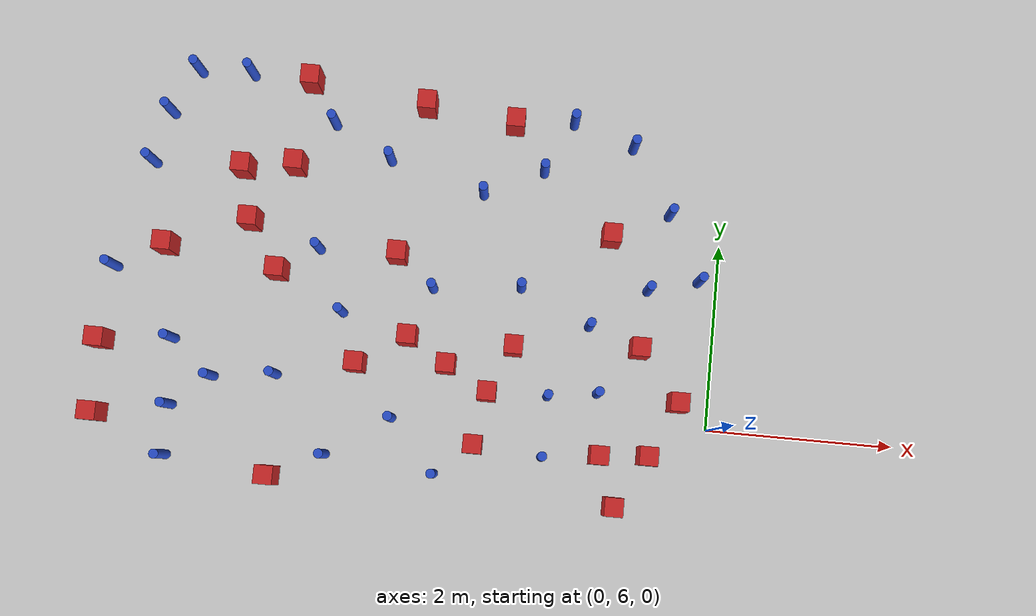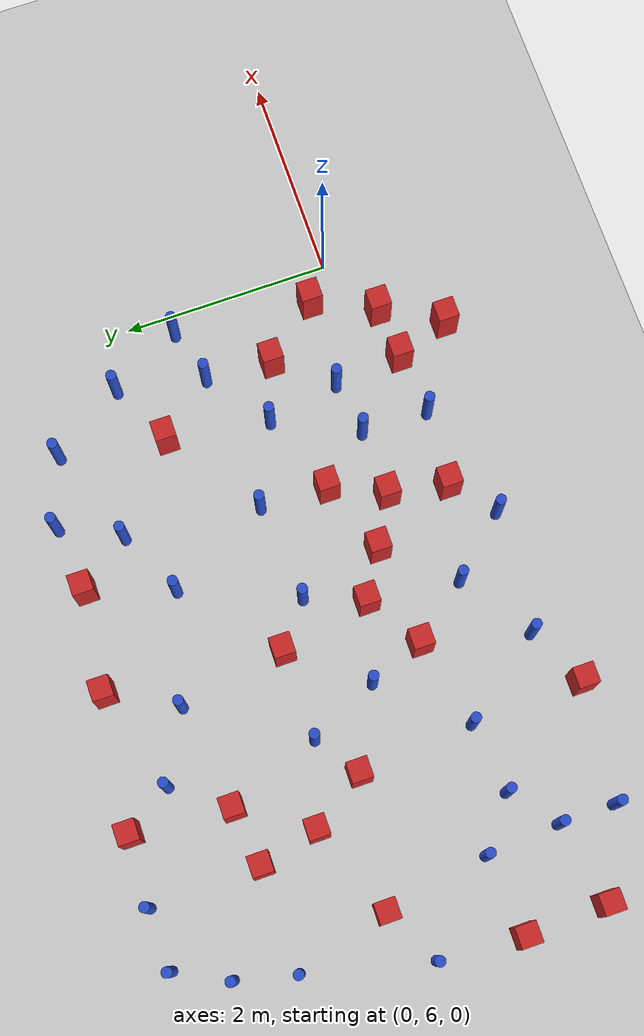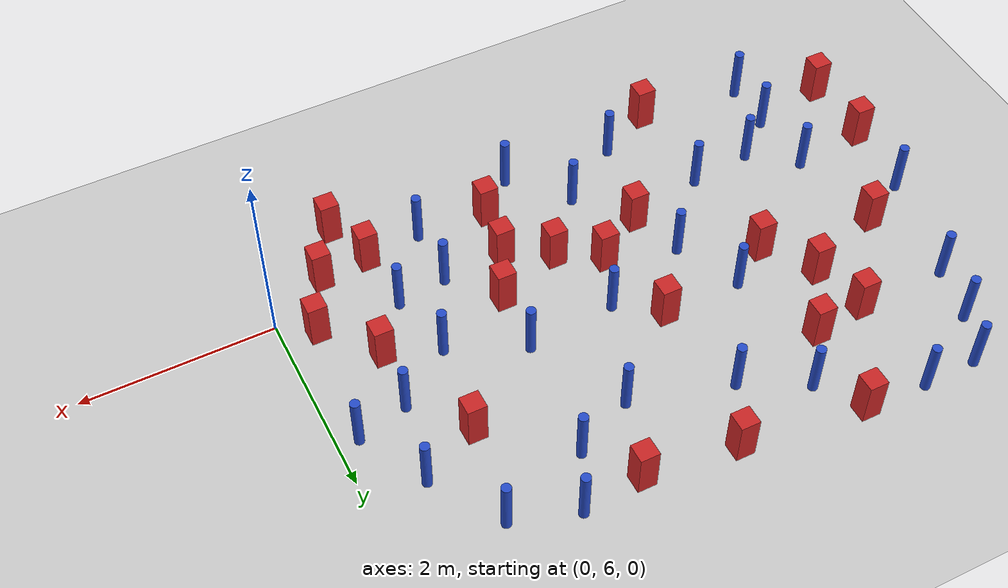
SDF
<sdf version="1.6">
 <world name="default">
  <model name="ground_plane">
   <static>1</static>
   <link name="link">
    <collision name="collision">
     <geometry><plane><normal>0 0 1</normal><size>100 100</size></plane></geometry>
     <surface><friction><ode><mu>100</mu><mu2>50</mu2></ode></friction></surface>
    </collision>
    <visual name="visual">
     <cast_shadows>0</cast_shadows>
     <geometry><plane><normal>0 0 1</normal><size>100 100</size></plane></geometry>
     <material>
      <ambient>1.0 1.0 1.0 1.0</ambient>
      <diffuse>0.8 0.8 0.8 1.0</diffuse>
      <specular>0.01 0.01 0.01 1.000000</specular>
     </material>
    </visual>
   </link>
  </model>
  <model name="square_post_obstacle17">
   <static>true</static>
   <pose>-0.951644109244 5.10202093142 8.22691968438e-08 7.22125133819e-06 -7.54495500217e-07 2.29674213826e-05</pose>
   <link name="link">
    <pose>0 0 0.25 0 -0 0</pose>
    <inertial>
     <mass>100</mass>
     <inertia>
      <ixx>0.166667</ixx>
      <ixy>0</ixy>
      <ixz>0</ixz>
      <iyy>0.166667</iyy>
      <iyz>0</iyz>
      <izz>0.166667</izz>
     </inertia>
    </inertial>
    <collision name="collision"><geometry><box><size>.2 .2 .5</size></box></geometry></collision>
    <visual name="visual">
     <geometry><box><size>.2 .2 .5</size></box></geometry>
     <material>
      <script><name>Gazebo/Red</name><uri>file://media/materials/scripts/gazebo.material</uri></script>
     </material>
    </visual>
   </link>
  </model>
  <model name="pole_obstacle15">
   <static>true</static>
   <pose>-1.73520311705 6.2080001693 2.88873142074e-08 -9.90536689852e-09 4.60219948989e-07 -1.2096599496e-07</pose>
   <link name="link">
    <pose>0 0 0.3 0 -0 0</pose>
    <inertial>
     <mass>1</mass>
     <inertia><ixx>0.145833</ixx><ixy>0</ixy><ixz>0</ixz><iyy>0.145833</iyy><iyz>0</iyz><izz>0.125</izz></inertia>
    </inertial>
    <collision name="collision">
     <geometry><cylinder><radius>0.05</radius><length>.6</length></cylinder></geometry>
    </collision>
    <visual name="visual">
     <geometry><cylinder><radius>0.05</radius><length>.6</length></cylinder></geometry>
     <material>
      <script><name>Gazebo/Blue</name><uri>file://media/materials/scripts/gazebo.material</uri></script>
     </material>
    </visual>
   </link>
  </model>
  <model name="square_post_obstacle23">
   <static>true</static>
   <pose>-3.81385583843 6.37962311088 8.22691968438e-08 7.2212513382e-06 -7.54495500217e-07 2.29674213826e-05</pose>
   <link name="link">
    <pose>0 0 0.25 0 -0 0</pose>
    <inertial>
     <mass>100</mass>
     <inertia>
      <ixx>0.166667</ixx>
      <ixy>0</ixy>
      <ixz>0</ixz>
      <iyy>0.166667</iyy>
      <iyz>0</iyz>
      <izz>0.166667</izz>
     </inertia>
    </inertial>
    <collision name="collision"><geometry><box><size>.2 .2 .5</size></box></geometry></collision>
    <visual name="visual">
     <geometry><box><size>.2 .2 .5</size></box></geometry>
     <material>
      <script><name>Gazebo/Red</name><uri>file://media/materials/scripts/gazebo.material</uri></script>
     </material>
    </visual>
   </link>
  </model>
  <model name="square_post_obstacle24">
   <static>true</static>
   <pose>-0.628443217506 5.6638643802 8.22691968438e-08 7.2212513382e-06 -7.54495500217e-07 2.29674213826e-05</pose>
   <link name="link">
    <pose>0 0 0.25 0 -0 0</pose>
    <inertial>
     <mass>100</mass>
     <inertia>
      <ixx>0.166667</ixx>
      <ixy>0</ixy>
      <ixz>0</ixz>
      <iyy>0.166667</iyy>
      <iyz>0</iyz>
      <izz>0.166667</izz>
     </inertia>
    </inertial>
    <collision name="collision"><geometry><box><size>.2 .2 .5</size></box></geometry></collision>
    <visual name="visual">
     <geometry><box><size>.2 .2 .5</size></box></geometry>
     <material>
      <script><name>Gazebo/Red</name><uri>file://media/materials/scripts/gazebo.material</uri></script>
     </material>
    </visual>
   </link>
  </model>
  <model name="pole_obstacle19">
   <static>true</static>
   <pose>-2.88137677167 5.27667176062 2.88873142074e-08 -9.90536689859e-09 4.60219948989e-07 -1.20965994961e-07</pose>
   <link name="link">
    <pose>0 0 0.3 0 -0 0</pose>
    <inertial>
     <mass>1</mass>
     <inertia><ixx>0.145833</ixx><ixy>0</ixy><ixz>0</ixz><iyy>0.145833</iyy><iyz>0</iyz><izz>0.125</izz></inertia>
    </inertial>
    <collision name="collision">
     <geometry><cylinder><radius>0.05</radius><length>.6</length></cylinder></geometry>
    </collision>
    <visual name="visual">
     <geometry><cylinder><radius>0.05</radius><length>.6</length></cylinder></geometry>
     <material>
      <script><name>Gazebo/Blue</name><uri>file://media/materials/scripts/gazebo.material</uri></script>
     </material>
    </visual>
   </link>
  </model>
  <model name="pole_obstacle21">
   <static>true</static>
   <pose>-1.02925283939 8.9944359458 2.88873142074e-08 -9.90536690309e-09 4.60219948978e-07 -1.20965994968e-07</pose>
   <link name="link">
    <pose>0 0 0.3 0 -0 0</pose>
    <inertial>
     <mass>1</mass>
     <inertia><ixx>0.145833</ixx><ixy>0</ixy><ixz>0</ixz><iyy>0.145833</iyy><iyz>0</iyz><izz>0.125</izz></inertia>
    </inertial>
    <collision name="collision">
     <geometry><cylinder><radius>0.05</radius><length>.6</length></cylinder></geometry>
    </collision>
    <visual name="visual">
     <geometry><cylinder><radius>0.05</radius><length>.6</length></cylinder></geometry>
     <material>
      <script><name>Gazebo/Blue</name><uri>file://media/materials/scripts/gazebo.material</uri></script>
     </material>
    </visual>
   </link>
  </model>
  <model name="pole_obstacle23">
   <static>true</static>
   <pose>-2.61648437873 8.34305971529 2.88873142074e-08 -9.90536692318e-09 4.6021994893e-07 -1.20965994988e-07</pose>
   <link name="link">
    <pose>0 0 0.3 0 -0 0</pose>
    <inertial>
     <mass>1</mass>
     <inertia><ixx>0.145833</ixx><ixy>0</ixy><ixz>0</ixz><iyy>0.145833</iyy><iyz>0</iyz><izz>0.125</izz></inertia>
    </inertial>
    <collision name="collision">
     <geometry><cylinder><radius>0.05</radius><length>.6</length></cylinder></geometry>
    </collision>
    <visual name="visual">
     <geometry><cylinder><radius>0.05</radius><length>.6</length></cylinder></geometry>
     <material>
      <script><name>Gazebo/Blue</name><uri>file://media/materials/scripts/gazebo.material</uri></script>
     </material>
    </visual>
   </link>
  </model>
  <model name="pole_obstacle24">
   <static>true</static>
   <pose>-5.34906535879 6.10243270833 2.88873142074e-08 -9.90536690842e-09 4.60219948965e-07 -1.20965994976e-07</pose>
   <link name="link">
    <pose>0 0 0.3 0 -0 0</pose>
    <inertial>
     <mass>1</mass>
     <inertia><ixx>0.145833</ixx><ixy>0</ixy><ixz>0</ixz><iyy>0.145833</iyy><iyz>0</iyz><izz>0.125</izz></inertia>
    </inertial>
    <collision name="collision">
     <geometry><cylinder><radius>0.05</radius><length>.6</length></cylinder></geometry>
    </collision>
    <visual name="visual">
     <geometry><cylinder><radius>0.05</radius><length>.6</length></cylinder></geometry>
     <material>
      <script><name>Gazebo/Blue</name><uri>file://media/materials/scripts/gazebo.material</uri></script>
     </material>
    </visual>
   </link>
  </model>
  <model name="pole_obstacle26">
   <static>true</static>
   <pose>-4.67102967473 6.18310304343 2.88873142074e-08 -9.90536690842e-09 4.60219948965e-07 -1.20965994976e-07</pose>
   <link name="link">
    <pose>0 0 0.3 0 -0 0</pose>
    <inertial>
     <mass>1</mass>
     <inertia><ixx>0.145833</ixx><ixy>0</ixy><ixz>0</ixz><iyy>0.145833</iyy><iyz>0</iyz><izz>0.125</izz></inertia>
    </inertial>
    <collision name="collision">
     <geometry><cylinder><radius>0.05</radius><length>.6</length></cylinder></geometry>
    </collision>
    <visual name="visual">
     <geometry><cylinder><radius>0.05</radius><length>.6</length></cylinder></geometry>
     <material>
      <script><name>Gazebo/Blue</name><uri>file://media/materials/scripts/gazebo.material</uri></script>
     </material>
    </visual>
   </link>
  </model>
  <model name="pole_obstacle34">
   <static>true</static>
   <pose>-6.09774144319 8.94425294916 2.88873142074e-08 -9.9053668967e-09 4.60219948993e-07 -1.20965994957e-07</pose>
   <link name="link">
    <pose>0 0 0.3 0 -0 0</pose>
    <inertial>
     <mass>1</mass>
     <inertia><ixx>0.145833</ixx><ixy>0</ixy><ixz>0</ixz><iyy>0.145833</iyy><iyz>0</iyz><izz>0.125</izz></inertia>
    </inertial>
    <collision name="collision">
     <geometry><cylinder><radius>0.05</radius><length>.6</length></cylinder></geometry>
    </collision>
    <visual name="visual">
     <geometry><cylinder><radius>0.05</radius><length>.6</length></cylinder></geometry>
     <material>
      <script><name>Gazebo/Blue</name><uri>file://media/materials/scripts/gazebo.material</uri></script>
     </material>
    </visual>
   </link>
  </model>
  <model name="square_post_obstacle36">
   <static>true</static>
   <pose>-5.10172764606 7.82366204708 8.22691968438e-08 7.22125133819e-06 -7.54495500217e-07 2.29674213826e-05</pose>
   <link name="link">
    <pose>0 0 0.25 0 -0 0</pose>
    <inertial>
     <mass>100</mass>
     <inertia>
      <ixx>0.166667</ixx>
      <ixy>0</ixy>
      <ixz>0</ixz>
      <iyy>0.166667</iyy>
      <iyz>0</iyz>
      <izz>0.166667</izz>
     </inertia>
    </inertial>
    <collision name="collision"><geometry><box><size>.2 .2 .5</size></box></geometry></collision>
    <visual name="visual">
     <geometry><box><size>.2 .2 .5</size></box></geometry>
     <material>
      <script><name>Gazebo/Red</name><uri>file://media/materials/scripts/gazebo.material</uri></script>
     </material>
    </visual>
   </link>
  </model>
  <model name="pole_obstacle37">
   <static>true</static>
   <pose>-5.76445728278 5.22135623228 2.88873142074e-08 -9.90536690842e-09 4.60219948965e-07 -1.20965994976e-07</pose>
   <link name="link">
    <pose>0 0 0.3 0 -0 0</pose>
    <inertial>
     <mass>1</mass>
     <inertia><ixx>0.145833</ixx><ixy>0</ixy><ixz>0</ixz><iyy>0.145833</iyy><iyz>0</iyz><izz>0.125</izz></inertia>
    </inertial>
    <collision name="collision">
     <geometry><cylinder><radius>0.05</radius><length>.6</length></cylinder></geometry>
    </collision>
    <visual name="visual">
     <geometry><cylinder><radius>0.05</radius><length>.6</length></cylinder></geometry>
     <material>
      <script><name>Gazebo/Blue</name><uri>file://media/materials/scripts/gazebo.material</uri></script>
     </material>
    </visual>
   </link>
  </model>
  <model name="pole_obstacle39">
   <static>true</static>
   <pose>-2.11707868723 7.35290722713 2.88873142074e-08 -9.90536689859e-09 4.60219948989e-07 -1.20965994961e-07</pose>
   <link name="link">
    <pose>0 0 0.3 0 -0 0</pose>
    <inertial>
     <mass>1</mass>
     <inertia><ixx>0.145833</ixx><ixy>0</ixy><ixz>0</ixz><iyy>0.145833</iyy><iyz>0</iyz><izz>0.125</izz></inertia>
    </inertial>
    <collision name="collision">
     <geometry><cylinder><radius>0.05</radius><length>.6</length></cylinder></geometry>
    </collision>
    <visual name="visual">
     <geometry><cylinder><radius>0.05</radius><length>.6</length></cylinder></geometry>
     <material>
      <script><name>Gazebo/Blue</name><uri>file://media/materials/scripts/gazebo.material</uri></script>
     </material>
    </visual>
   </link>
  </model>
  <model name="pole_obstacle41">
   <static>true</static>
   <pose>-3.66068570032 8.62684997735 2.88873142074e-08 -9.9053668994e-09 4.60219948987e-07 -1.20965994963e-07</pose>
   <link name="link">
    <pose>0 0 0.3 0 -0 0</pose>
    <inertial>
     <mass>1</mass>
     <inertia><ixx>0.145833</ixx><ixy>0</ixy><ixz>0</ixz><iyy>0.145833</iyy><iyz>0</iyz><izz>0.125</izz></inertia>
    </inertial>
    <collision name="collision">
     <geometry><cylinder><radius>0.05</radius><length>.6</length></cylinder></geometry>
    </collision>
    <visual name="visual">
     <geometry><cylinder><radius>0.05</radius><length>.6</length></cylinder></geometry>
     <material>
      <script><name>Gazebo/Blue</name><uri>file://media/materials/scripts/gazebo.material</uri></script>
     </material>
    </visual>
   </link>
  </model>
  <model name="pole_obstacle43">
   <static>true</static>
   <pose>-5.81457338145 6.47170094287 2.88873142074e-08 -9.90536690842e-09 4.60219948965e-07 -1.20965994976e-07</pose>
   <link name="link">
    <pose>0 0 0.3 0 -0 0</pose>
    <inertial>
     <mass>1</mass>
     <inertia><ixx>0.145833</ixx><ixy>0</ixy><ixz>0</ixz><iyy>0.145833</iyy><iyz>0</iyz><izz>0.125</izz></inertia>
    </inertial>
    <collision name="collision">
     <geometry><cylinder><radius>0.05</radius><length>.6</length></cylinder></geometry>
    </collision>
    <visual name="visual">
     <geometry><cylinder><radius>0.05</radius><length>.6</length></cylinder></geometry>
     <material>
      <script><name>Gazebo/Blue</name><uri>file://media/materials/scripts/gazebo.material</uri></script>
     </material>
    </visual>
   </link>
  </model>
  <model name="square_post_obstacle41">
   <static>true</static>
   <pose>-4.75569651963 7.30326396044 8.22691968438e-08 7.2212513382e-06 -7.54495500217e-07 2.29674213826e-05</pose>
   <link name="link">
    <pose>0 0 0.25 0 -0 0</pose>
    <inertial>
     <mass>100</mass>
     <inertia>
      <ixx>0.166667</ixx>
      <ixy>0</ixy>
      <ixz>0</ixz>
      <iyy>0.166667</iyy>
      <iyz>0</iyz>
      <izz>0.166667</izz>
     </inertia>
    </inertial>
    <collision name="collision"><geometry><box><size>.2 .2 .5</size></box></geometry></collision>
    <visual name="visual">
     <geometry><box><size>.2 .2 .5</size></box></geometry>
     <material>
      <script><name>Gazebo/Red</name><uri>file://media/materials/scripts/gazebo.material</uri></script>
     </material>
    </visual>
   </link>
  </model>
  <model name="pole_obstacle51">
   <static>true</static>
   <pose>-4.06216441605 5.37830327213 2.88873142074e-08 -9.90536690842e-09 4.60219948965e-07 -1.20965994976e-07</pose>
   <link name="link">
    <pose>0 0 0.3 0 -0 0</pose>
    <inertial>
     <mass>1</mass>
     <inertia><ixx>0.145833</ixx><ixy>0</ixy><ixz>0</ixz><iyy>0.145833</iyy><iyz>0</iyz><izz>0.125</izz></inertia>
    </inertial>
    <collision name="collision">
     <geometry><cylinder><radius>0.05</radius><length>.6</length></cylinder></geometry>
    </collision>
    <visual name="visual">
     <geometry><cylinder><radius>0.05</radius><length>.6</length></cylinder></geometry>
     <material>
      <script><name>Gazebo/Blue</name><uri>file://media/materials/scripts/gazebo.material</uri></script>
     </material>
    </visual>
   </link>
  </model>
  <model name="square_post_obstacle55">
   <static>true</static>
   <pose>-2.48345097276 5.62311939025 8.22691968438e-08 7.2212513382e-06 -7.54495500217e-07 2.29674213826e-05</pose>
   <link name="link">
    <pose>0 0 0.25 0 -0 0</pose>
    <inertial>
     <mass>100</mass>
     <inertia>
      <ixx>0.166667</ixx>
      <ixy>0</ixy>
      <ixz>0</ixz>
      <iyy>0.166667</iyy>
      <iyz>0</iyz>
      <izz>0.166667</izz>
     </inertia>
    </inertial>
    <collision name="collision"><geometry><box><size>.2 .2 .5</size></box></geometry></collision>
    <visual name="visual">
     <geometry><box><size>.2 .2 .5</size></box></geometry>
     <material>
      <script><name>Gazebo/Red</name><uri>file://media/materials/scripts/gazebo.material</uri></script>
     </material>
    </visual>
   </link>
  </model>
  <model name="pole_obstacle56">
   <static>true</static>
   <pose>-6.52491725992 7.19608023483 2.88873142074e-08 -9.90536690842e-09 4.60219948965e-07 -1.20965994976e-07</pose>
   <link name="link">
    <pose>0 0 0.3 0 -0 0</pose>
    <inertial>
     <mass>1</mass>
     <inertia><ixx>0.145833</ixx><ixy>0</ixy><ixz>0</ixz><iyy>0.145833</iyy><iyz>0</iyz><izz>0.125</izz></inertia>
    </inertial>
    <collision name="collision">
     <geometry><cylinder><radius>0.05</radius><length>.6</length></cylinder></geometry>
    </collision>
    <visual name="visual">
     <geometry><cylinder><radius>0.05</radius><length>.6</length></cylinder></geometry>
     <material>
      <script><name>Gazebo/Blue</name><uri>file://media/materials/scripts/gazebo.material</uri></script>
     </material>
    </visual>
   </link>
  </model>
  <model name="pole_obstacle59">
   <static>true</static>
   <pose>-5.26618979842 9.4505818408 2.88873142074e-08 -9.9053668967e-09 4.60219948993e-07 -1.20965994957e-07</pose>
   <link name="link">
    <pose>0 0 0.3 0 -0 0</pose>
    <inertial>
     <mass>1</mass>
     <inertia><ixx>0.145833</ixx><ixy>0</ixy><ixz>0</ixz><iyy>0.145833</iyy><iyz>0</iyz><izz>0.125</izz></inertia>
    </inertial>
    <collision name="collision">
     <geometry><cylinder><radius>0.05</radius><length>.6</length></cylinder></geometry>
    </collision>
    <visual name="visual">
     <geometry><cylinder><radius>0.05</radius><length>.6</length></cylinder></geometry>
     <material>
      <script><name>Gazebo/Blue</name><uri>file://media/materials/scripts/gazebo.material</uri></script>
     </material>
    </visual>
   </link>
  </model>
  <model name="square_post_obstacle69">
   <static>true</static>
   <pose>-1.142241428 5.62738194909 8.22691968438e-08 7.2212513382e-06 -7.54495500217e-07 2.29674213826e-05</pose>
   <link name="link">
    <pose>0 0 0.25 0 -0 0</pose>
    <inertial>
     <mass>100</mass>
     <inertia>
      <ixx>0.166667</ixx>
      <ixy>0</ixy>
      <ixz>0</ixz>
      <iyy>0.166667</iyy>
      <iyz>0</iyz>
      <izz>0.166667</izz>
     </inertia>
    </inertial>
    <collision name="collision"><geometry><box><size>.2 .2 .5</size></box></geometry></collision>
    <visual name="visual">
     <geometry><box><size>.2 .2 .5</size></box></geometry>
     <material>
      <script><name>Gazebo/Red</name><uri>file://media/materials/scripts/gazebo.material</uri></script>
     </material>
    </visual>
   </link>
  </model>
  <model name="square_post_obstacle80">
   <static>true</static>
   <pose>-5.98204581073 7.47556775876 8.22691968438e-08 7.2212513382e-06 -7.54495500217e-07 2.29674213826e-05</pose>
   <link name="link">
    <pose>0 0 0.25 0 -0 0</pose>
    <inertial>
     <mass>100</mass>
     <inertia>
      <ixx>0.166667</ixx>
      <ixy>0</ixy>
      <ixz>0</ixz>
      <iyy>0.166667</iyy>
      <iyz>0</iyz>
      <izz>0.166667</izz>
     </inertia>
    </inertial>
    <collision name="collision"><geometry><box><size>.2 .2 .5</size></box></geometry></collision>
    <visual name="visual">
     <geometry><box><size>.2 .2 .5</size></box></geometry>
     <material>
      <script><name>Gazebo/Red</name><uri>file://media/materials/scripts/gazebo.material</uri></script>
     </material>
    </visual>
   </link>
  </model>
  <model name="pole_obstacle89">
   <static>true</static>
   <pose>-4.33707202417 7.58083849884 2.88873142074e-08 -9.90536690842e-09 4.60219948965e-07 -1.20965994976e-07</pose>
   <link name="link">
    <pose>0 0 0.3 0 -0 0</pose>
    <inertial>
     <mass>1</mass>
     <inertia><ixx>0.145833</ixx><ixy>0</ixy><ixz>0</ixz><iyy>0.145833</iyy><iyz>0</iyz><izz>0.125</izz></inertia>
    </inertial>
    <collision name="collision">
     <geometry><cylinder><radius>0.05</radius><length>.6</length></cylinder></geometry>
    </collision>
    <visual name="visual">
     <geometry><cylinder><radius>0.05</radius><length>.6</length></cylinder></geometry>
     <material>
      <script><name>Gazebo/Blue</name><uri>file://media/materials/scripts/gazebo.material</uri></script>
     </material>
    </visual>
   </link>
  </model>
  <model name="pole_obstacle94">
   <static>true</static>
   <pose>-0.210831847739 7.5854188295 2.88873142074e-08 -9.90536689703e-09 4.60219948992e-07 -1.20965994959e-07</pose>
   <link name="link">
    <pose>0 0 0.3 0 -0 0</pose>
    <inertial>
     <mass>1</mass>
     <inertia><ixx>0.145833</ixx><ixy>0</ixy><ixz>0</ixz><iyy>0.145833</iyy><iyz>0</iyz><izz>0.125</izz></inertia>
    </inertial>
    <collision name="collision">
     <geometry><cylinder><radius>0.05</radius><length>.6</length></cylinder></geometry>
    </collision>
    <visual name="visual">
     <geometry><cylinder><radius>0.05</radius><length>.6</length></cylinder></geometry>
     <material>
      <script><name>Gazebo/Blue</name><uri>file://media/materials/scripts/gazebo.material</uri></script>
     </material>
    </visual>
   </link>
  </model>
  <model name="square_post_obstacle86">
   <static>true</static>
   <pose>-2.84640730589 6.44794063503 8.22691968438e-08 7.2212513382e-06 -7.54495500217e-07 2.29674213826e-05</pose>
   <link name="link">
    <pose>0 0 0.25 0 -0 0</pose>
    <inertial>
     <mass>100</mass>
     <inertia>
      <ixx>0.166667</ixx>
      <ixy>0</ixy>
      <ixz>0</ixz>
      <iyy>0.166667</iyy>
      <iyz>0</iyz>
      <izz>0.166667</izz>
     </inertia>
    </inertial>
    <collision name="collision"><geometry><box><size>.2 .2 .5</size></box></geometry></collision>
    <visual name="visual">
     <geometry><box><size>.2 .2 .5</size></box></geometry>
     <material>
      <script><name>Gazebo/Red</name><uri>file://media/materials/scripts/gazebo.material</uri></script>
     </material>
    </visual>
   </link>
  </model>
  <model name="square_post_obstacle87">
   <static>true</static>
   <pose>-6.57301217025 6.39018175078 8.22691968438e-08 7.2212513382e-06 -7.54495500217e-07 2.29674213826e-05</pose>
   <link name="link">
    <pose>0 0 0.25 0 -0 0</pose>
    <inertial>
     <mass>100</mass>
     <inertia>
      <ixx>0.166667</ixx>
      <ixy>0</ixy>
      <ixz>0</ixz>
      <iyy>0.166667</iyy>
      <iyz>0</iyz>
      <izz>0.166667</izz>
     </inertia>
    </inertial>
    <collision name="collision"><geometry><box><size>.2 .2 .5</size></box></geometry></collision>
    <visual name="visual">
     <geometry><box><size>.2 .2 .5</size></box></geometry>
     <material>
      <script><name>Gazebo/Red</name><uri>file://media/materials/scripts/gazebo.material</uri></script>
     </material>
    </visual>
   </link>
  </model>
  <model name="pole_obstacle100">
   <static>true</static>
   <pose>-4.3046209783 8.97336697704 2.88873142074e-08 -9.9053668967e-09 4.60219948993e-07 -1.20965994957e-07</pose>
   <link name="link">
    <pose>0 0 0.3 0 -0 0</pose>
    <inertial>
     <mass>1</mass>
     <inertia><ixx>0.145833</ixx><ixy>0</ixy><ixz>0</ixz><iyy>0.145833</iyy><iyz>0</iyz><izz>0.125</izz></inertia>
    </inertial>
    <collision name="collision">
     <geometry><cylinder><radius>0.05</radius><length>.6</length></cylinder></geometry>
    </collision>
    <visual name="visual">
     <geometry><cylinder><radius>0.05</radius><length>.6</length></cylinder></geometry>
     <material>
      <script><name>Gazebo/Blue</name><uri>file://media/materials/scripts/gazebo.material</uri></script>
     </material>
    </visual>
   </link>
  </model>
  <model name="pole_obstacle102">
   <static>true</static>
   <pose>-1.69568093311 9.21419446165 2.88873142074e-08 -9.90536690474e-09 4.60219948974e-07 -1.2096599497e-07</pose>
   <link name="link">
    <pose>0 0 0.3 0 -0 0</pose>
    <inertial>
     <mass>1</mass>
     <inertia><ixx>0.145833</ixx><ixy>0</ixy><ixz>0</ixz><iyy>0.145833</iyy><iyz>0</iyz><izz>0.125</izz></inertia>
    </inertial>
    <collision name="collision">
     <geometry><cylinder><radius>0.05</radius><length>.6</length></cylinder></geometry>
    </collision>
    <visual name="visual">
     <geometry><cylinder><radius>0.05</radius><length>.6</length></cylinder></geometry>
     <material>
      <script><name>Gazebo/Blue</name><uri>file://media/materials/scripts/gazebo.material</uri></script>
     </material>
    </visual>
   </link>
  </model>
  <model name="square_post_obstacle96">
   <static>true</static>
   <pose>-0.345239039927 6.25766070811 8.22691968438e-08 7.2212513382e-06 -7.54495500217e-07 2.29674213826e-05</pose>
   <link name="link">
    <pose>0 0 0.25 0 -0 0</pose>
    <inertial>
     <mass>100</mass>
     <inertia>
      <ixx>0.166667</ixx>
      <ixy>0</ixy>
      <ixz>0</ixz>
      <iyy>0.166667</iyy>
      <iyz>0</iyz>
      <izz>0.166667</izz>
     </inertia>
    </inertial>
    <collision name="collision"><geometry><box><size>.2 .2 .5</size></box></geometry></collision>
    <visual name="visual">
     <geometry><box><size>.2 .2 .5</size></box></geometry>
     <material>
      <script><name>Gazebo/Red</name><uri>file://media/materials/scripts/gazebo.material</uri></script>
     </material>
    </visual>
   </link>
  </model>
  <model name="square_post_obstacle107">
   <static>true</static>
   <pose>-3.47806701985 7.59458534397 8.22691968438e-08 7.2212513382e-06 -7.54495500217e-07 2.29674213826e-05</pose>
   <link name="link">
    <pose>0 0 0.25 0 -0 0</pose>
    <inertial>
     <mass>100</mass>
     <inertia>
      <ixx>0.166667</ixx>
      <ixy>0</ixy>
      <ixz>0</ixz>
      <iyy>0.166667</iyy>
      <iyz>0</iyz>
      <izz>0.166667</izz>
     </inertia>
    </inertial>
    <collision name="collision"><geometry><box><size>.2 .2 .5</size></box></geometry></collision>
    <visual name="visual">
     <geometry><box><size>.2 .2 .5</size></box></geometry>
     <material>
      <script><name>Gazebo/Red</name><uri>file://media/materials/scripts/gazebo.material</uri></script>
     </material>
    </visual>
   </link>
  </model>
  <model name="pole_obstacle126">
   <static>true</static>
   <pose>-6.23437907558 8.37519865637 2.88873142074e-08 -9.9053668967e-09 4.60219948993e-07 -1.20965994957e-07</pose>
   <link name="link">
    <pose>0 0 0.3 0 -0 0</pose>
    <inertial>
     <mass>1</mass>
     <inertia><ixx>0.145833</ixx><ixy>0</ixy><ixz>0</ixz><iyy>0.145833</iyy><iyz>0</iyz><izz>0.125</izz></inertia>
    </inertial>
    <collision name="collision">
     <geometry><cylinder><radius>0.05</radius><length>.6</length></cylinder></geometry>
    </collision>
    <visual name="visual">
     <geometry><cylinder><radius>0.05</radius><length>.6</length></cylinder></geometry>
     <material>
      <script><name>Gazebo/Blue</name><uri>file://media/materials/scripts/gazebo.material</uri></script>
     </material>
    </visual>
   </link>
  </model>
  <model name="pole_obstacle141">
   <static>true</static>
   <pose>-3.38745938359 5.82989128282 2.88873142074e-08 -9.90536689859e-09 4.60219948989e-07 -1.20965994961e-07</pose>
   <link name="link">
    <pose>0 0 0.3 0 -0 0</pose>
    <inertial>
     <mass>1</mass>
     <inertia><ixx>0.145833</ixx><ixy>0</ixy><ixz>0</ixz><iyy>0.145833</iyy><iyz>0</iyz><izz>0.125</izz></inertia>
    </inertial>
    <collision name="collision">
     <geometry><cylinder><radius>0.05</radius><length>.6</length></cylinder></geometry>
    </collision>
    <visual name="visual">
     <geometry><cylinder><radius>0.05</radius><length>.6</length></cylinder></geometry>
     <material>
      <script><name>Gazebo/Blue</name><uri>file://media/materials/scripts/gazebo.material</uri></script>
     </material>
    </visual>
   </link>
  </model>
  <model name="square_post_obstacle126">
   <static>true</static>
   <pose>-0.796685178472 6.7999798201 8.22691968438e-08 7.2212513382e-06 -7.54495500217e-07 2.29674213826e-05</pose>
   <link name="link">
    <pose>0 0 0.25 0 -0 0</pose>
    <inertial>
     <mass>100</mass>
     <inertia>
      <ixx>0.166667</ixx>
      <ixy>0</ixy>
      <ixz>0</ixz>
      <iyy>0.166667</iyy>
      <iyz>0</iyz>
      <izz>0.166667</izz>
     </inertia>
    </inertial>
    <collision name="collision"><geometry><box><size>.2 .2 .5</size></box></geometry></collision>
    <visual name="visual">
     <geometry><box><size>.2 .2 .5</size></box></geometry>
     <material>
      <script><name>Gazebo/Red</name><uri>file://media/materials/scripts/gazebo.material</uri></script>
     </material>
    </visual>
   </link>
  </model>
  <model name="square_post_obstacle138">
   <static>true</static>
   <pose>-1.1960341489 7.98745562041 8.22691968438e-08 7.22125133819e-06 -7.54495500217e-07 2.29674213826e-05</pose>
   <link name="link">
    <pose>0 0 0.25 0 -0 0</pose>
    <inertial>
     <mass>100</mass>
     <inertia>
      <ixx>0.166667</ixx>
      <ixy>0</ixy>
      <ixz>0</ixz>
      <iyy>0.166667</iyy>
      <iyz>0</iyz>
      <izz>0.166667</izz>
     </inertia>
    </inertial>
    <collision name="collision"><geometry><box><size>.2 .2 .5</size></box></geometry></collision>
    <visual name="visual">
     <geometry><box><size>.2 .2 .5</size></box></geometry>
     <material>
      <script><name>Gazebo/Red</name><uri>file://media/materials/scripts/gazebo.material</uri></script>
     </material>
    </visual>
   </link>
  </model>
  <model name="square_post_obstacle148">
   <static>true</static>
   <pose>-2.38403856531 6.19284332198 8.22691968438e-08 7.2212513382e-06 -7.54495500217e-07 2.29674213826e-05</pose>
   <link name="link">
    <pose>0 0 0.25 0 -0 0</pose>
    <inertial>
     <mass>100</mass>
     <inertia>
      <ixx>0.166667</ixx>
      <ixy>0</ixy>
      <ixz>0</ixz>
      <iyy>0.166667</iyy>
      <iyz>0</iyz>
      <izz>0.166667</izz>
     </inertia>
    </inertial>
    <collision name="collision"><geometry><box><size>.2 .2 .5</size></box></geometry></collision>
    <visual name="visual">
     <geometry><box><size>.2 .2 .5</size></box></geometry>
     <material>
      <script><name>Gazebo/Red</name><uri>file://media/materials/scripts/gazebo.material</uri></script>
     </material>
    </visual>
   </link>
  </model>
  <model name="pole_obstacle161">
   <static>true</static>
   <pose>-1.34881788403 6.99893651693 2.88873142074e-08 -9.90536689852e-09 4.60219948989e-07 -1.2096599496e-07</pose>
   <link name="link">
    <pose>0 0 0.3 0 -0 0</pose>
    <inertial>
     <mass>1</mass>
     <inertia><ixx>0.145833</ixx><ixy>0</ixy><ixz>0</ixz><iyy>0.145833</iyy><iyz>0</iyz><izz>0.125</izz></inertia>
    </inertial>
    <collision name="collision">
     <geometry><cylinder><radius>0.05</radius><length>.6</length></cylinder></geometry>
    </collision>
    <visual name="visual">
     <geometry><cylinder><radius>0.05</radius><length>.6</length></cylinder></geometry>
     <material>
      <script><name>Gazebo/Blue</name><uri>file://media/materials/scripts/gazebo.material</uri></script>
     </material>
    </visual>
   </link>
  </model>
  <model name="square_post_obstacle159">
   <static>true</static>
   <pose>-4.67809348738 8.47452983422 8.22691968438e-08 7.22125133819e-06 -7.54495500217e-07 2.29674213826e-05</pose>
   <link name="link">
    <pose>0 0 0.25 0 -0 0</pose>
    <inertial>
     <mass>100</mass>
     <inertia>
      <ixx>0.166667</ixx>
      <ixy>0</ixy>
      <ixz>0</ixz>
      <iyy>0.166667</iyy>
      <iyz>0</iyz>
      <izz>0.166667</izz>
     </inertia>
    </inertial>
    <collision name="collision"><geometry><box><size>.2 .2 .5</size></box></geometry></collision>
    <visual name="visual">
     <geometry><box><size>.2 .2 .5</size></box></geometry>
     <material>
      <script><name>Gazebo/Red</name><uri>file://media/materials/scripts/gazebo.material</uri></script>
     </material>
    </visual>
   </link>
  </model>
  <model name="pole_obstacle169">
   <static>true</static>
   <pose>-0.748931017446 7.44300508347 2.88873142074e-08 -9.90536689661e-09 4.60219948993e-07 -1.20965994957e-07</pose>
   <link name="link">
    <pose>0 0 0.3 0 -0 0</pose>
    <inertial>
     <mass>1</mass>
     <inertia><ixx>0.145833</ixx><ixy>0</ixy><ixz>0</ixz><iyy>0.145833</iyy><iyz>0</iyz><izz>0.125</izz></inertia>
    </inertial>
    <collision name="collision">
     <geometry><cylinder><radius>0.05</radius><length>.6</length></cylinder></geometry>
    </collision>
    <visual name="visual">
     <geometry><cylinder><radius>0.05</radius><length>.6</length></cylinder></geometry>
     <material>
      <script><name>Gazebo/Blue</name><uri>file://media/materials/scripts/gazebo.material</uri></script>
     </material>
    </visual>
   </link>
  </model>
  <model name="pole_obstacle172">
   <static>true</static>
   <pose>-4.02236236976 6.91481203573 2.88873142074e-08 -9.90536691069e-09 4.6021994896e-07 -1.20965994979e-07</pose>
   <link name="link">
    <pose>0 0 0.3 0 -0 0</pose>
    <inertial>
     <mass>1</mass>
     <inertia><ixx>0.145833</ixx><ixy>0</ixy><ixz>0</ixz><iyy>0.145833</iyy><iyz>0</iyz><izz>0.125</izz></inertia>
    </inertial>
    <collision name="collision">
     <geometry><cylinder><radius>0.05</radius><length>.6</length></cylinder></geometry>
    </collision>
    <visual name="visual">
     <geometry><cylinder><radius>0.05</radius><length>.6</length></cylinder></geometry>
     <material>
      <script><name>Gazebo/Blue</name><uri>file://media/materials/scripts/gazebo.material</uri></script>
     </material>
    </visual>
   </link>
  </model>
  <model name="pole_obstacle178">
   <static>true</static>
   <pose>-1.2043328462 6.28524293282 2.88873142074e-08 -9.90536689852e-09 4.60219948989e-07 -1.2096599496e-07</pose>
   <link name="link">
    <pose>0 0 0.3 0 -0 0</pose>
    <inertial>
     <mass>1</mass>
     <inertia><ixx>0.145833</ixx><ixy>0</ixy><ixz>0</ixz><iyy>0.145833</iyy><iyz>0</iyz><izz>0.125</izz></inertia>
    </inertial>
    <collision name="collision">
     <geometry><cylinder><radius>0.05</radius><length>.6</length></cylinder></geometry>
    </collision>
    <visual name="visual">
     <geometry><cylinder><radius>0.05</radius><length>.6</length></cylinder></geometry>
     <material>
      <script><name>Gazebo/Blue</name><uri>file://media/materials/scripts/gazebo.material</uri></script>
     </material>
    </visual>
   </link>
  </model>
  <model name="pole_obstacle179">
   <static>true</static>
   <pose>-5.76525315304 5.75961487018 2.88873142074e-08 -9.90536690842e-09 4.60219948965e-07 -1.20965994976e-07</pose>
   <link name="link">
    <pose>0 0 0.3 0 -0 0</pose>
    <inertial>
     <mass>1</mass>
     <inertia><ixx>0.145833</ixx><ixy>0</ixy><ixz>0</ixz><iyy>0.145833</iyy><iyz>0</iyz><izz>0.125</izz></inertia>
    </inertial>
    <collision name="collision">
     <geometry><cylinder><radius>0.05</radius><length>.6</length></cylinder></geometry>
    </collision>
    <visual name="visual">
     <geometry><cylinder><radius>0.05</radius><length>.6</length></cylinder></geometry>
     <material>
      <script><name>Gazebo/Blue</name><uri>file://media/materials/scripts/gazebo.material</uri></script>
     </material>
    </visual>
   </link>
  </model>
  <model name="square_post_obstacle183">
   <static>true</static>
   <pose>-2.33652246248 9.14315064526 8.22691968438e-08 7.22125133819e-06 -7.54495500217e-07 2.29674213826e-05</pose>
   <link name="link">
    <pose>0 0 0.25 0 -0 0</pose>
    <inertial>
     <mass>100</mass>
     <inertia>
      <ixx>0.166667</ixx>
      <ixy>0</ixy>
      <ixz>0</ixz>
      <iyy>0.166667</iyy>
      <iyz>0</iyz>
      <izz>0.166667</izz>
     </inertia>
    </inertial>
    <collision name="collision"><geometry><box><size>.2 .2 .5</size></box></geometry></collision>
    <visual name="visual">
     <geometry><box><size>.2 .2 .5</size></box></geometry>
     <material>
      <script><name>Gazebo/Red</name><uri>file://media/materials/scripts/gazebo.material</uri></script>
     </material>
    </visual>
   </link>
  </model>
  <model name="square_post_obstacle202">
   <static>true</static>
   <pose>-6.55069883013 5.60804426649 8.22691968438e-08 7.22125133819e-06 -7.54495500217e-07 2.29674213826e-05</pose>
   <link name="link">
    <pose>0 0 0.25 0 -0 0</pose>
    <inertial>
     <mass>100</mass>
     <inertia>
      <ixx>0.166667</ixx>
      <ixy>0</ixy>
      <ixz>0</ixz>
      <iyy>0.166667</iyy>
      <iyz>0</iyz>
      <izz>0.166667</izz>
     </inertia>
    </inertial>
    <collision name="collision"><geometry><box><size>.2 .2 .5</size></box></geometry></collision>
    <visual name="visual">
     <geometry><box><size>.2 .2 .5</size></box></geometry>
     <material>
      <script><name>Gazebo/Red</name><uri>file://media/materials/scripts/gazebo.material</uri></script>
     </material>
    </visual>
   </link>
  </model>
  <model name="pole_obstacle188">
   <static>true</static>
   <pose>-5.8456760986 9.43373580143 2.88873142074e-08 -9.9053668967e-09 4.60219948993e-07 -1.20965994957e-07</pose>
   <link name="link">
    <pose>0 0 0.3 0 -0 0</pose>
    <inertial>
     <mass>1</mass>
     <inertia><ixx>0.145833</ixx><ixy>0</ixy><ixz>0</ixz><iyy>0.145833</iyy><iyz>0</iyz><izz>0.125</izz></inertia>
    </inertial>
    <collision name="collision">
     <geometry><cylinder><radius>0.05</radius><length>.6</length></cylinder></geometry>
    </collision>
    <visual name="visual">
     <geometry><cylinder><radius>0.05</radius><length>.6</length></cylinder></geometry>
     <material>
      <script><name>Gazebo/Blue</name><uri>file://media/materials/scripts/gazebo.material</uri></script>
     </material>
    </visual>
   </link>
  </model>
  <model name="pole_obstacle196">
   <static>true</static>
   <pose>-1.97831280521 8.64593126274 2.88873142074e-08 -9.90536690438e-09 4.60219948975e-07 -1.2096599497e-07</pose>
   <link name="link">
    <pose>0 0 0.3 0 -0 0</pose>
    <inertial>
     <mass>1</mass>
     <inertia><ixx>0.145833</ixx><ixy>0</ixy><ixz>0</ixz><iyy>0.145833</iyy><iyz>0</iyz><izz>0.125</izz></inertia>
    </inertial>
    <collision name="collision">
     <geometry><cylinder><radius>0.05</radius><length>.6</length></cylinder></geometry>
    </collision>
    <visual name="visual">
     <geometry><cylinder><radius>0.05</radius><length>.6</length></cylinder></geometry>
     <material>
      <script><name>Gazebo/Blue</name><uri>file://media/materials/scripts/gazebo.material</uri></script>
     </material>
    </visual>
   </link>
  </model>
  <model name="pole_obstacle201">
   <static>true</static>
   <pose>-3.0681794154 7.26075865094 2.88873142074e-08 -9.90536689859e-09 4.60219948989e-07 -1.20965994961e-07</pose>
   <link name="link">
    <pose>0 0 0.3 0 -0 0</pose>
    <inertial>
     <mass>1</mass>
     <inertia><ixx>0.145833</ixx><ixy>0</ixy><ixz>0</ixz><iyy>0.145833</iyy><iyz>0</iyz><izz>0.125</izz></inertia>
    </inertial>
    <collision name="collision">
     <geometry><cylinder><radius>0.05</radius><length>.6</length></cylinder></geometry>
    </collision>
    <visual name="visual">
     <geometry><cylinder><radius>0.05</radius><length>.6</length></cylinder></geometry>
     <material>
      <script><name>Gazebo/Blue</name><uri>file://media/materials/scripts/gazebo.material</uri></script>
     </material>
    </visual>
   </link>
  </model>
  <model name="pole_obstacle206">
   <static>true</static>
   <pose>-0.579567556423 8.28625795996 2.88873142074e-08 -9.90536690779e-09 4.60219948967e-07 -1.20965994975e-07</pose>
   <link name="link">
    <pose>0 0 0.3 0 -0 0</pose>
    <inertial>
     <mass>1</mass>
     <inertia><ixx>0.145833</ixx><ixy>0</ixy><ixz>0</ixz><iyy>0.145833</iyy><iyz>0</iyz><izz>0.125</izz></inertia>
    </inertial>
    <collision name="collision">
     <geometry><cylinder><radius>0.05</radius><length>.6</length></cylinder></geometry>
    </collision>
    <visual name="visual">
     <geometry><cylinder><radius>0.05</radius><length>.6</length></cylinder></geometry>
     <material>
      <script><name>Gazebo/Blue</name><uri>file://media/materials/scripts/gazebo.material</uri></script>
     </material>
    </visual>
   </link>
  </model>
  <model name="pole_obstacle209">
   <static>true</static>
   <pose>-1.74298405972 5.55795177701 2.88873142074e-08 -9.90536689852e-09 4.60219948989e-07 -1.2096599496e-07</pose>
   <link name="link">
    <pose>0 0 0.3 0 -0 0</pose>
    <inertial>
     <mass>1</mass>
     <inertia><ixx>0.145833</ixx><ixy>0</ixy><ixz>0</ixz><iyy>0.145833</iyy><iyz>0</iyz><izz>0.125</izz></inertia>
    </inertial>
    <collision name="collision">
     <geometry><cylinder><radius>0.05</radius><length>.6</length></cylinder></geometry>
    </collision>
    <visual name="visual">
     <geometry><cylinder><radius>0.05</radius><length>.6</length></cylinder></geometry>
     <material>
      <script><name>Gazebo/Blue</name><uri>file://media/materials/scripts/gazebo.material</uri></script>
     </material>
    </visual>
   </link>
  </model>
  <model name="square_post_obstacle208">
   <static>true</static>
   <pose>-4.59765996738 9.41907996466 8.22691968438e-08 7.22125133819e-06 -7.54495500217e-07 2.29674213826e-05</pose>
   <link name="link">
    <pose>0 0 0.25 0 -0 0</pose>
    <inertial>
     <mass>100</mass>
     <inertia>
      <ixx>0.166667</ixx>
      <ixy>0</ixy>
      <ixz>0</ixz>
      <iyy>0.166667</iyy>
      <iyz>0</iyz>
      <izz>0.166667</izz>
     </inertia>
    </inertial>
    <collision name="collision"><geometry><box><size>.2 .2 .5</size></box></geometry></collision>
    <visual name="visual">
     <geometry><box><size>.2 .2 .5</size></box></geometry>
     <material>
      <script><name>Gazebo/Red</name><uri>file://media/materials/scripts/gazebo.material</uri></script>
     </material>
    </visual>
   </link>
  </model>
  <model name="square_post_obstacle209">
   <static>true</static>
   <pose>-3.31311996738 9.25632996466 8.22691968438e-08 7.22125133819e-06 -7.54495500217e-07 2.29674213826e-05</pose>
   <link name="link">
    <pose>0 0 0.25 0 -0 0</pose>
    <inertial>
     <mass>100</mass>
     <inertia>
      <ixx>0.166667</ixx>
      <ixy>0</ixy>
      <ixz>0</ixz>
      <iyy>0.166667</iyy>
      <iyz>0</iyz>
      <izz>0.166667</izz>
     </inertia>
    </inertial>
    <collision name="collision"><geometry><box><size>.2 .2 .5</size></box></geometry></collision>
    <visual name="visual">
     <geometry><box><size>.2 .2 .5</size></box></geometry>
     <material>
      <script><name>Gazebo/Red</name><uri>file://media/materials/scripts/gazebo.material</uri></script>
     </material>
    </visual>
   </link>
  </model>
  <model name="square_post_obstacle210">
   <static>true</static>
   <pose>-3.28476996738 6.71295996466 8.22691968438e-08 7.22125133819e-06 -7.54495500217e-07 2.29674213826e-05</pose>
   <link name="link">
    <pose>0 0 0.25 0 -0 0</pose>
    <inertial>
     <mass>100</mass>
     <inertia>
      <ixx>0.166667</ixx>
      <ixy>0</ixy>
      <ixz>0</ixz>
      <iyy>0.166667</iyy>
      <iyz>0</iyz>
      <izz>0.166667</izz>
     </inertia>
    </inertial>
    <collision name="collision"><geometry><box><size>.2 .2 .5</size></box></geometry></collision>
    <visual name="visual">
     <geometry><box><size>.2 .2 .5</size></box></geometry>
     <material>
      <script><name>Gazebo/Red</name><uri>file://media/materials/scripts/gazebo.material</uri></script>
     </material>
    </visual>
   </link>
  </model>
  <model name="square_post_obstacle212">
   <static>true</static>
   <pose>-5.24074996738 8.39433996466 8.22691968438e-08 7.22125133819e-06 -7.54495500217e-07 2.29674213826e-05</pose>
   <link name="link">
    <pose>0 0 0.25 0 -0 0</pose>
    <inertial>
     <mass>100</mass>
     <inertia>
      <ixx>0.166667</ixx>
      <ixy>0</ixy>
      <ixz>0</ixz>
      <iyy>0.166667</iyy>
      <iyz>0</iyz>
      <izz>0.166667</izz>
     </inertia>
    </inertial>
    <collision name="collision"><geometry><box><size>.2 .2 .5</size></box></geometry></collision>
    <visual name="visual">
     <geometry><box><size>.2 .2 .5</size></box></geometry>
     <material>
      <script><name>Gazebo/Red</name><uri>file://media/materials/scripts/gazebo.material</uri></script>
     </material>
    </visual>
   </link>
  </model>
  <model name="square_post_obstacle216">
   <static>true</static>
   <pose>-4.62783996738 5.10661996466 8.22691968438e-08 7.22125133819e-06 -7.54495500217e-07 2.29674213826e-05</pose>
   <link name="link">
    <pose>0 0 0.25 0 -0 0</pose>
    <inertial>
     <mass>100</mass>
     <inertia>
      <ixx>0.166667</ixx>
      <ixy>0</ixy>
      <ixz>0</ixz>
      <iyy>0.166667</iyy>
      <iyz>0</iyz>
      <izz>0.166667</izz>
     </inertia>
    </inertial>
    <collision name="collision"><geometry><box><size>.2 .2 .5</size></box></geometry></collision>
    <visual name="visual">
     <geometry><box><size>.2 .2 .5</size></box></geometry>
     <material>
      <script><name>Gazebo/Red</name><uri>file://media/materials/scripts/gazebo.material</uri></script>
     </material>
    </visual>
   </link>
  </model>
  <model name="square_post_obstacle219">
   <static>true</static>
   <pose>-2.14567996738 6.70556996466 8.22691968438e-08 7.2212513382e-06 -7.54495500217e-07 2.29674213826e-05</pose>
   <link name="link">
    <pose>0 0 0.25 0 -0 0</pose>
    <inertial>
     <mass>100</mass>
     <inertia>
      <ixx>0.166667</ixx>
      <ixy>0</ixy>
      <ixz>0</ixz>
      <iyy>0.166667</iyy>
      <iyz>0</iyz>
      <izz>0.166667</izz>
     </inertia>
    </inertial>
    <collision name="collision"><geometry><box><size>.2 .2 .5</size></box></geometry></collision>
    <visual name="visual">
     <geometry><box><size>.2 .2 .5</size></box></geometry>
     <material>
      <script><name>Gazebo/Red</name><uri>file://media/materials/scripts/gazebo.material</uri></script>
     </material>
    </visual>
   </link>
  </model>
 </world>
</sdf>
